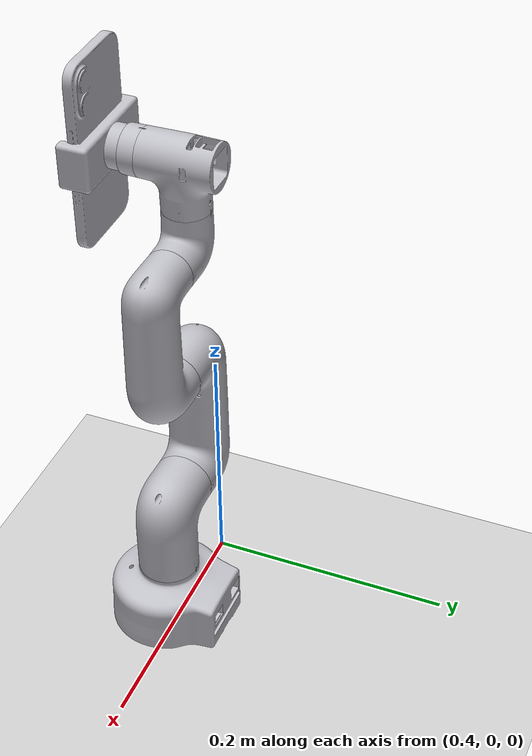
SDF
<sdf version="1.7">
 <world name="warehouse_world">
  <physics name="1ms" type="ignored">
   <max_step_size>0.001</max_step_size>
   <real_time_factor>1.0</real_time_factor>
  </physics>
  <plugin filename="libignition-gazebo-physics-system.so" name="ignition::gazebo::systems::Physics"/>
  <plugin filename="libignition-gazebo-user-commands-system.so" name="ignition::gazebo::systems::UserCommands"/>
  <plugin filename="libignition-gazebo-scene-broadcaster-system.so" name="ignition::gazebo::systems::SceneBroadcaster"/>
  <plugin filename="libignition-gazebo-sensors-system.so" name="ignition::gazebo::systems::Sensors"/>
  <light type="directional" name="sun">
   <pose>0 0 10 0 0 0</pose>
   <diffuse>0.8 0.8 0.8 1</diffuse>
   <specular>0.2 0.2 0.2 1</specular>
   <direction>-0.5 0.1 -0.9</direction>
  </light>
  <model name="ground_plane">
   <static>true</static>
   <link name="link">
    <collision name="collision"><geometry><plane><normal>0 0 1</normal></plane></geometry></collision>
    <visual name="visual"><geometry><plane><normal>0 0 1</normal><size>100 100</size></plane></geometry></visual>
   </link>
  </model>
  <include><uri>file://myCobot/myCobot.sdf</uri><pose>0.5 0 0 0 0 0</pose></include>
 </world>
</sdf>

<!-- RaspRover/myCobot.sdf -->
<sdf version='1.7'>
  <model name='myCobot_280_PI_230708'>
    <link name='base_link'>
      <inertial>
        <pose>0.002747 0.006582 0.04743 0 -0 0</pose>
        <mass>0.623082</mass>
        <inertia>
          <ixx>0.000684</ixx>
          <ixy>-3e-06</ixy>
          <ixz>3e-06</ixz>
          <iyy>0.000529</iyy>
          <iyz>5e-06</iyz>
          <izz>0.000974</izz>
        </inertia>
      </inertial>
      <collision name='base_link_collision'>
        <pose>0 0 0 0 -0 0</pose>
        <geometry>
          <mesh>
            <scale>0.001 0.001 0.001</scale>
            <uri>file://meshes/base_link.stl</uri>
          </mesh>
        </geometry>
        <surface>
          <contact>
            <ode/>
          </contact>
          <friction>
            <ode>
              <mu>0.2</mu>
              <mu2>0.2</mu2>
            </ode>
          </friction>
        </surface>
      </collision>
      <visual name='base_link_visual'>
        <pose>0 0 0 0 -0 0</pose>
        <geometry>
          <mesh>
            <scale>0.001 0.001 0.001</scale>
            <uri>file://meshes/base_link.stl</uri>
          </mesh>
        </geometry>
        <material>
          <script>
            <name>Gazebo/Silver</name>
            <uri>file://media/materials/scripts/gazebo.material</uri>
          </script>
        </material>
      </visual>
      <self_collide>1</self_collide>
      <gravity>1</gravity>
    </link>
    <joint name='Revolute 11' type='revolute'>
      <pose relative_to='base_link'>0.002418 0 0.072835 0 -0 0</pose>
      <parent>base_link</parent>
      <child>j1_1</child>
      <axis>
        <xyz>0 0 1</xyz>
        <limit>
          <lower>-1e+16</lower>
          <upper>1e+16</upper>
        </limit>
        <dynamics>
          <spring_reference>0</spring_reference>
          <spring_stiffness>0</spring_stiffness>
        </dynamics>
      </axis>
    </joint>
    <link name='j1_1'>
      <pose relative_to='Revolute 11'>0 0 0 0 -0 0</pose>
      <inertial>
        <pose>-0.00715 6e-06 0.038268 0 -0 0</pose>
        <mass>0.335581</mass>
        <inertia>
          <ixx>0.000317</ixx>
          <ixy>0</ixy>
          <ixz>5.6e-05</ixz>
          <iyy>0.000357</iyy>
          <iyz>0</iyz>
          <izz>0.000183</izz>
        </inertia>
      </inertial>
      <collision name='j1_1_collision'>
        <pose>-0.002418 0 -0.072835 0 -0 0</pose>
        <geometry>
          <mesh>
            <scale>0.001 0.001 0.001</scale>
            <uri>file://meshes/j1_1.stl</uri>
          </mesh>
        </geometry>
        <surface>
          <contact>
            <ode/>
          </contact>
          <friction>
            <ode>
              <mu>0.2</mu>
              <mu2>0.2</mu2>
            </ode>
          </friction>
        </surface>
      </collision>
      <visual name='j1_1_visual'>
        <pose>-0.002418 0 -0.072835 0 -0 0</pose>
        <geometry>
          <mesh>
            <scale>0.001 0.001 0.001</scale>
            <uri>file://meshes/j1_1.stl</uri>
          </mesh>
        </geometry>
        <material>
          <script>
            <name>Gazebo/Silver</name>
            <uri>file://media/materials/scripts/gazebo.material</uri>
          </script>
        </material>
      </visual>
      <self_collide>1</self_collide>
    </link>
    <joint name='Revolute 4' type='revolute'>
      <pose relative_to='j1_1'>-0.034705 0 0.059705 0 -0 0</pose>
      <parent>j1_1</parent>
      <child>j2_1</child>
      <axis>
        <xyz>1 0 0</xyz>
        <limit>
          <lower>-1e+16</lower>
          <upper>1e+16</upper>
        </limit>
        <dynamics>
          <spring_reference>0</spring_reference>
          <spring_stiffness>0</spring_stiffness>
        </dynamics>
      </axis>
    </joint>
    <link name='j2_1'>
      <pose relative_to='Revolute 4'>0 0 0 0 -0 0</pose>
      <inertial>
        <pose>-0.023209 -1e-06 0.051618 0 -0 0</pose>
        <mass>0.524558</mass>
        <inertia>
          <ixx>0.001311</ixx>
          <ixy>0</ixy>
          <ixz>-1e-06</ixz>
          <iyy>0.001359</iyy>
          <iyz>0</iyz>
          <izz>0.000278</izz>
        </inertia>
      </inertial>
      <collision name='j2_1_collision'>
        <pose>0.032287 0 -0.13254 0 -0 0</pose>
        <geometry>
          <mesh>
            <scale>0.001 0.001 0.001</scale>
            <uri>file://meshes/j2_1.stl</uri>
          </mesh>
        </geometry>
        <surface>
          <contact>
            <ode/>
          </contact>
          <friction>
            <ode>
              <mu>0.2</mu>
              <mu2>0.2</mu2>
            </ode>
          </friction>
        </surface>
      </collision>
      <visual name='j2_1_visual'>
        <pose>0.032287 0 -0.13254 0 -0 0</pose>
        <geometry>
          <mesh>
            <scale>0.001 0.001 0.001</scale>
            <uri>file://meshes/j2_1.stl</uri>
          </mesh>
        </geometry>
        <material>
          <script>
            <name>Gazebo/Silver</name>
            <uri>file://media/materials/scripts/gazebo.material</uri>
          </script>
        </material>
      </visual>
      <self_collide>1</self_collide>
    </link>
    <joint name='Revolute 5' type='revolute'>
      <pose relative_to='j2_1'>0.006776 0 0.11 0 -0 0</pose>
      <parent>j2_1</parent>
      <child>j3_1</child>
      <axis>
        <xyz>-1 0 0</xyz>
        <limit>
          <lower>-1e+16</lower>
          <upper>1e+16</upper>
        </limit>
        <dynamics>
          <spring_reference>0</spring_reference>
          <spring_stiffness>0</spring_stiffness>
        </dynamics>
      </axis>
    </joint>
    <link name='j3_1'>
      <pose relative_to='Revolute 5'>0 0 0 0 -0 0</pose>
      <inertial>
        <pose>0.02307 0 0.043197 0 -0 0</pose>
        <mass>0.41531</mass>
        <inertia>
          <ixx>0.000783</ixx>
          <ixy>0</ixy>
          <ixz>-3.4e-05</ixz>
          <iyy>0.000834</iyy>
          <iyz>0</iyz>
          <izz>0.000191</izz>
        </inertia>
      </inertial>
      <collision name='j3_1_collision'>
        <pose>0.025511 0 -0.24254 0 -0 0</pose>
        <geometry>
          <mesh>
            <scale>0.001 0.001 0.001</scale>
            <uri>file://meshes/j3_1.stl</uri>
          </mesh>
        </geometry>
        <surface>
          <contact>
            <ode/>
          </contact>
          <friction>
            <ode>
              <mu>0.2</mu>
              <mu2>0.2</mu2>
            </ode>
          </friction>
        </surface>
      </collision>
      <visual name='j3_1_visual'>
        <pose>0.025511 0 -0.24254 0 -0 0</pose>
        <geometry>
          <mesh>
            <scale>0.001 0.001 0.001</scale>
            <uri>file://meshes/j3_1.stl</uri>
          </mesh>
        </geometry>
        <material>
          <script>
            <name>Gazebo/Silver</name>
            <uri>file://media/materials/scripts/gazebo.material</uri>
          </script>
        </material>
      </visual>
      <self_collide>1</self_collide>
    </link>
    <joint name='Revolute 6' type='revolute'>
      <pose relative_to='j3_1'>-0.001444 0 0.096 0 -0 0</pose>
      <parent>j3_1</parent>
      <child>j4_1</child>
      <axis>
        <xyz>1 0 0</xyz>
        <limit>
          <lower>-1e+16</lower>
          <upper>1e+16</upper>
        </limit>
        <dynamics>
          <spring_reference>0</spring_reference>
          <spring_stiffness>0</spring_stiffness>
        </dynamics>
      </axis>
    </joint>
    <link name='j4_1'>
      <pose relative_to='Revolute 6'>0 0 0 0 -0 0</pose>
      <inertial>
        <pose>-0.022733 -3e-06 0.007679 0 -0 0</pose>
        <mass>0.189013</mass>
        <inertia>
          <ixx>7.1e-05</ixx>
          <ixy>0</ixy>
          <ixz>1.7e-05</ixz>
          <iyy>9.1e-05</iyy>
          <iyz>0</iyz>
          <izz>6.9e-05</izz>
        </inertia>
      </inertial>
      <collision name='j4_1_collision'>
        <pose>0.026955 0 -0.33854 0 -0 0</pose>
        <geometry>
          <mesh>
            <scale>0.001 0.001 0.001</scale>
            <uri>file://meshes/j4_1.stl</uri>
          </mesh>
        </geometry>
        <surface>
          <contact>
            <ode/>
          </contact>
          <friction>
            <ode>
              <mu>0.2</mu>
              <mu2>0.2</mu2>
            </ode>
          </friction>
        </surface>
      </collision>
      <visual name='j4_1_visual'>
        <pose>0.026955 0 -0.33854 0 -0 0</pose>
        <geometry>
          <mesh>
            <scale>0.001 0.001 0.001</scale>
            <uri>file://meshes/j4_1.stl</uri>
          </mesh>
        </geometry>
        <material>
          <script>
            <name>Gazebo/Silver</name>
            <uri>file://media/materials/scripts/gazebo.material</uri>
          </script>
        </material>
      </visual>
      <self_collide>1</self_collide>
    </link>
    <joint name='Revolute 7' type='revolute'>
      <pose relative_to='j4_1'>-0.033245 0 0.03483 0 -0 0</pose>
      <parent>j4_1</parent>
      <child>j5_1</child>
      <axis>
        <xyz>0 0 1</xyz>
        <limit>
          <lower>-1e+16</lower>
          <upper>1e+16</upper>
        </limit>
        <dynamics>
          <spring_reference>0</spring_reference>
          <spring_stiffness>0</spring_stiffness>
        </dynamics>
      </axis>
    </joint>
    <link name='j5_1'>
      <pose relative_to='Revolute 7'>0 0 0 0 -0 0</pose>
      <inertial>
        <pose>-0.000108 -0.002887 0.027643 0 -0 0</pose>
        <mass>0.226476</mass>
        <inertia>
          <ixx>0.000144</ixx>
          <ixy>0</ixy>
          <ixz>1e-06</ixz>
          <iyy>0.00011</iyy>
          <iyz>9e-06</iyz>
          <izz>9.8e-05</izz>
        </inertia>
      </inertial>
      <collision name='j5_1_collision'>
        <pose>0.0602 0 -0.37337 0 -0 0</pose>
        <geometry>
          <mesh>
            <scale>0.001 0.001 0.001</scale>
            <uri>file://meshes/j5_1.stl</uri>
          </mesh>
        </geometry>
        <surface>
          <contact>
            <ode/>
          </contact>
          <friction>
            <ode>
              <mu>0.2</mu>
              <mu2>0.2</mu2>
            </ode>
          </friction>
        </surface>
      </collision>
      <visual name='j5_1_visual'>
        <pose>0.0602 0 -0.37337 0 -0 0</pose>
        <geometry>
          <mesh>
            <scale>0.001 0.001 0.001</scale>
            <uri>file://./meshes/j5_1.stl</uri>
          </mesh>
        </geometry>
        <material>
          <script>
            <name>Gazebo/Silver</name>
            <uri>file://media/materials/scripts/gazebo.material</uri>
          </script>
        </material>
      </visual>
      <self_collide>1</self_collide>
    </link>
    <joint name='Revolute 9' type='revolute'>
      <pose relative_to='j5_1'>0 -0.031671 0.039625 0 -0 0</pose>
      <parent>j5_1</parent>
      <child>j6_1</child>
      <axis>
        <xyz>0 1 0</xyz>
        <limit>
          <lower>-1e+16</lower>
          <upper>1e+16</upper>
        </limit>
        <dynamics>
          <spring_reference>0</spring_reference>
          <spring_stiffness>0</spring_stiffness>
        </dynamics>
      </axis>
    </joint>
    <link name='j6_1'>
      <pose relative_to='Revolute 9'>0 0 0 0 -0 0</pose>
      <inertial>
        <pose>0.000293 -0.03302 0.000815 0 -0 0</pose>
        <mass>1.06304</mass>
        <inertia>
          <ixx>0.00132754</ixx>
          <ixy>-7.51882e-07</ixy>
          <ixz>-1.61557e-05</ixz>
          <iyy>0.00177849</iyy>
          <iyz>-5.28285e-07</iyz>
          <izz>0.00060916</izz>
        </inertia>
      </inertial>
      <collision name='j6_1_collision'>
        <pose>0.0602 0.031671 -0.412995 0 -0 0</pose>
        <geometry>
          <mesh>
            <scale>0.001 0.001 0.001</scale>
            <uri>file://meshes/j6_1.stl</uri>
          </mesh>
        </geometry>
        <surface>
          <contact>
            <ode/>
          </contact>
          <friction>
            <ode>
              <mu>0.2</mu>
              <mu2>0.2</mu2>
            </ode>
          </friction>
        </surface>
      </collision>
      <collision name='j6_1_fixed_joint_lump__grip_phone_v1_1_collision_1'>
        <pose>0.0602 0.031671 -0.412995 0 -0 0</pose>
        <geometry>
          <mesh>
            <scale>0.001 0.001 0.001</scale>
            <uri>file://meshes/grip_phone_v1_1.stl</uri>
          </mesh>
        </geometry>
        <surface>
          <contact>
            <ode/>
          </contact>
          <friction>
            <ode>
              <mu>0.2</mu>
              <mu2>0.2</mu2>
            </ode>
          </friction>
        </surface>
      </collision>
      <collision name='j6_1_fixed_joint_lump__iPhone17_v1_1_collision_2'>
        <pose>0.0602 0.031671 -0.412995 0 -0 0</pose>
        <geometry>
          <mesh>
            <scale>0.001 0.001 0.001</scale>
            <uri>file://meshes/iPhone17_v1_1.stl</uri>
          </mesh>
        </geometry>
        <surface>
          <contact>
            <ode/>
          </contact>
          <friction>
            <ode>
              <mu>0.2</mu>
              <mu2>0.2</mu2>
            </ode>
          </friction>
        </surface>
      </collision>
      <visual name='j6_1_visual'>
        <pose>0.0602 0.031671 -0.412995 0 -0 0</pose>
        <geometry>
          <mesh>
            <scale>0.001 0.001 0.001</scale>
            <uri>file://meshes/j6_1.stl</uri>
          </mesh>
        </geometry>
        <material>
          <script>
            <name>Gazebo/Silver</name>
            <uri>file://media/materials/scripts/gazebo.material</uri>
          </script>
        </material>
      </visual>
      <visual name='j6_1_fixed_joint_lump__grip_phone_v1_1_visual_1'>
        <pose>0.0602 0.031671 -0.412995 0 -0 0</pose>
        <geometry>
          <mesh>
            <scale>0.001 0.001 0.001</scale>
            <uri>file://meshes/grip_phone_v1_1.stl</uri>
          </mesh>
        </geometry>
        <material>
          <script>
            <name>Gazebo/Silver</name>
            <uri>file://media/materials/scripts/gazebo.material</uri>
          </script>
        </material>
      </visual>
      <visual name='j6_1_fixed_joint_lump__iPhone17_v1_1_visual_2'>
        <pose>0.0602 0.031671 -0.412995 0 -0 0</pose>
        <geometry>
          <mesh>
            <scale>0.001 0.001 0.001</scale>
            <uri>file://meshes/iPhone17_v1_1.stl</uri>
          </mesh>
        </geometry>
        <material>
          <script>
            <name>Gazebo/Silver</name>
            <uri>file://media/materials/scripts/gazebo.material</uri>
          </script>
        </material>
      </visual>
      <self_collide>1</self_collide>
      <self_collide>1</self_collide>
      <self_collide>1</self_collide>
    </link>
  </model>
</sdf>
